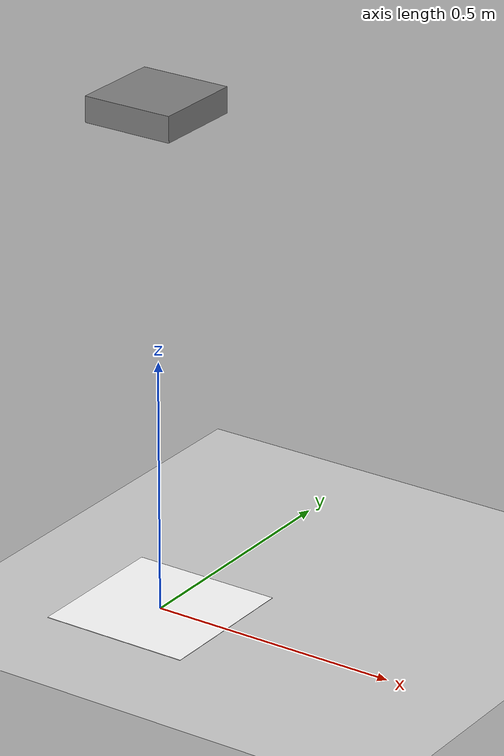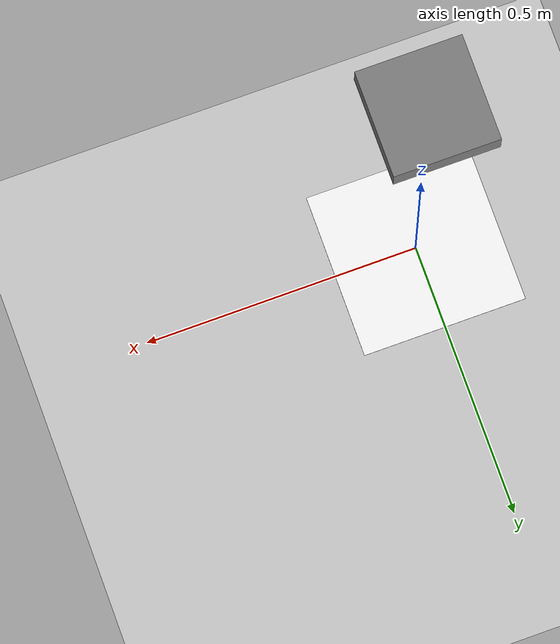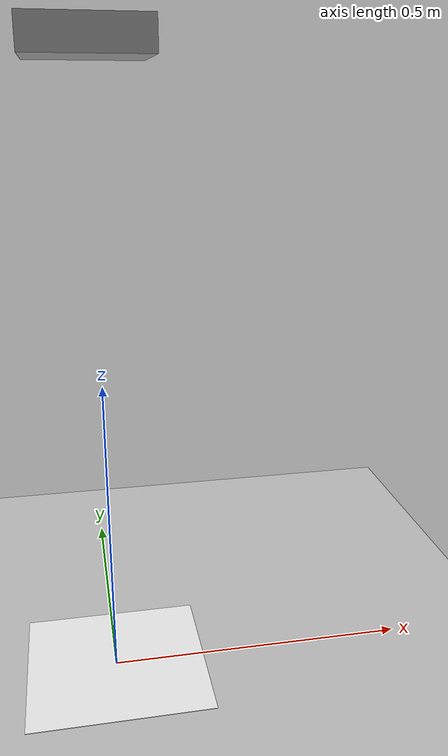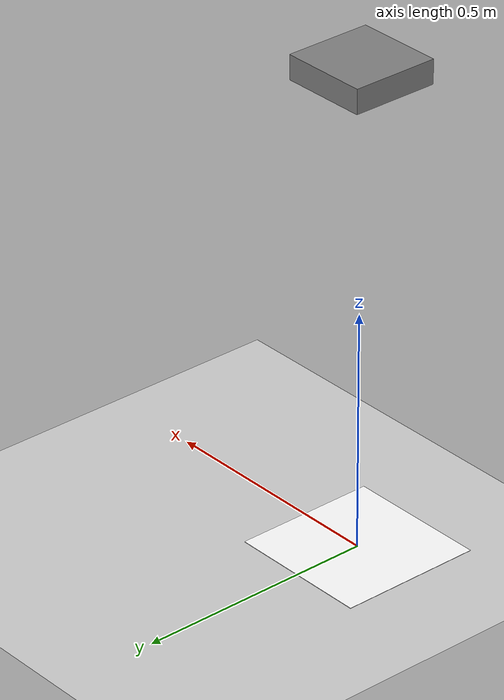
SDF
<?xml version="1.0"?>
<sdf version="1.8">
  <world name="default">

    <!-- 物理演算 -->
    <plugin filename="ignition-gazebo-physics-system"
            name="ignition::gazebo::systems::Physics"/>
    <!-- GUI/サービス操作 -->
    <plugin filename="ignition-gazebo-user-commands-system"
            name="ignition::gazebo::systems::UserCommands"/>
    <!-- シーン配信（GUI 表示用） -->
    <plugin filename="ignition-gazebo-scene-broadcaster-system"
            name="ignition::gazebo::systems::SceneBroadcaster"/>
    <!-- カメラ・センサー描画（Ogre2） -->
    <plugin filename="ignition-gazebo-sensors-system"
            name="ignition::gazebo::systems::Sensors">
      <render_engine>ogre2</render_engine>
    </plugin>

    <!-- 照明 -->
    <light name="sun" type="directional">
      <cast_shadows>true</cast_shadows>
      <pose>0 0 10 0 0 0</pose>
      <diffuse>1 1 1 1</diffuse>
      <specular>0.5 0.5 0.5 1</specular>
      <direction>-0.5 0.1 -0.9</direction>
    </light>

    <!-- 地面 -->
    <model name="ground_plane">
      <static>true</static>
      <link name="link">
        <collision name="collision">
          <geometry><plane><normal>0 0 1</normal><size>100 100</size></plane></geometry>
        </collision>
        <visual name="visual">
          <geometry><plane><normal>0 0 1</normal><size>100 100</size></plane></geometry>
          <material>
            <ambient>0.8 0.8 0.8 1</ambient>
            <diffuse>0.8 0.8 0.8 1</diffuse>
          </material>
        </visual>
      </link>
    </model>

    <!-- ArUco marker_23: 着陸目標（地面中央固定） -->
    <!-- IGN_GAZEBO_RESOURCE_PATH に tello_pilot/models が含まれている必要あり -->
    <include>
      <uri>model://marker_23</uri>
      <pose>0 0 0.001 0 0 0</pose>
    </include>

    <!--
      drone1: ドローンモデル（静的、z=1.0m）
      カメラは base_link の下面に配置し、地面（-z方向）を向く。
      pitch = π/2 (1.5708 rad) で +X が -Z 方向を向きカメラが下向きになる。
    -->
    <model name="drone1">
      <static>true</static>
      <pose>0 0 1.0 0 0 0</pose>

      <link name="base_link_1">
        <!-- ドローン本体の外観 -->
        <visual name="body">
          <geometry><box><size>0.18 0.18 0.05</size></box></geometry>
          <material>
            <ambient>0.3 0.3 0.3 1</ambient>
            <diffuse>0.5 0.5 0.5 1</diffuse>
          </material>
        </visual>

        <sensor name="camera" type="camera">
          <pose>0 0 -0.03 0 3.14159 0</pose>
          <topic>/drone1/camera/image</topic>
          <camera>
            <horizontal_fov>0.96</horizontal_fov>
            <image>
              <width>960</width>
              <height>720</height>
              <format>R8G8B8</format>
            </image>
            <clip>
              <near>0.05</near>
              <far>100</far>
            </clip>
          </camera>
          <always_on>true</always_on>
          <update_rate>30</update_rate>
          <visualize>true</visualize>
        </sensor>

      </link>
    </model>

  </world>
</sdf>

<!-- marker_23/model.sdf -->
<!--
  ArUco DICT_4X4_50 marker ID 23
  Ignition Gazebo (Fortress/Ogre2) 対応版。
  テクスチャ: materials/textures/aruco_mark_23.png
-->
<sdf version='1.8'>
  <model name='marker_23'>
    <static>true</static>

    <link name='marker'>
      <pose>0 0 0 0 0 0</pose>
      <visual name='visual'>
        <geometry>
          <box><size>0.3 0.3 0.001</size></box>
        </geometry>
        <material>
          <ambient>1 1 1 1</ambient>
          <diffuse>1 1 1 1</diffuse>
          <specular>0.1 0.1 0.1 1</specular>
          <emissive>0.8 0.8 0.8 0</emissive>
          <pbr>
            <metal>
              <!-- パスは model ディレクトリからの相対パス -->
              <albedo_map>materials/textures/aruco_mark_23.png</albedo_map>
            </metal>
          </pbr>
        </material>
      </visual>
    </link>

  </model>
</sdf>
